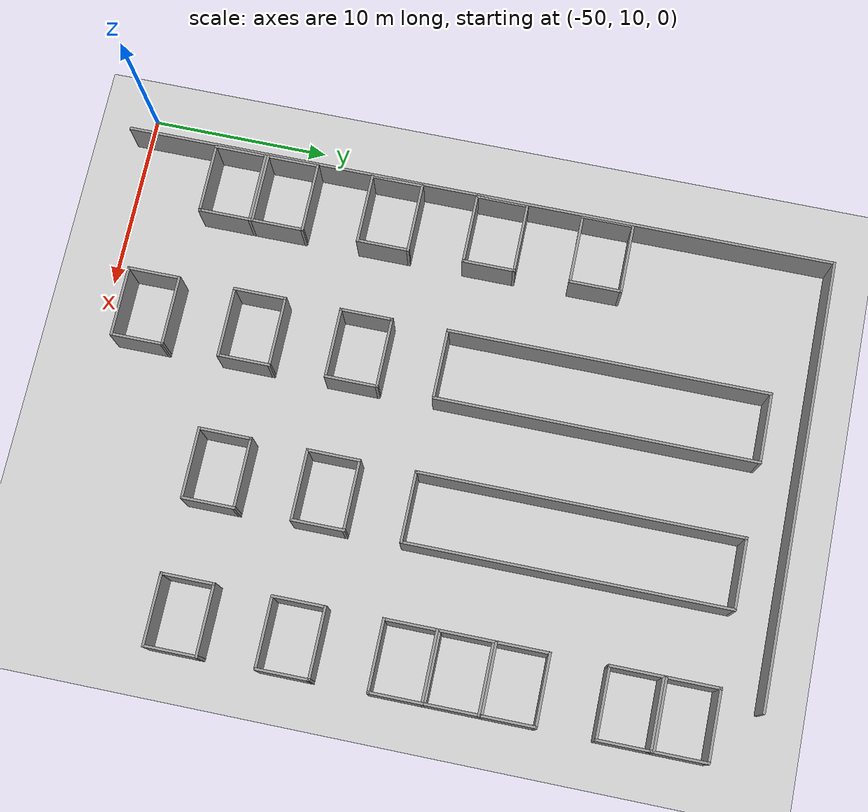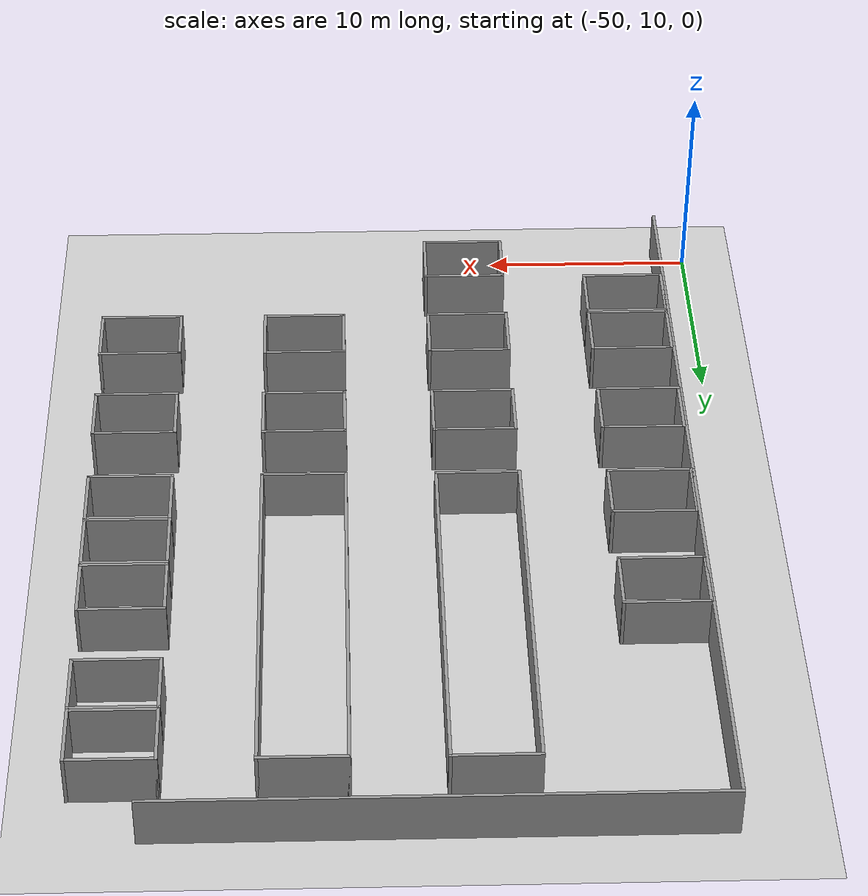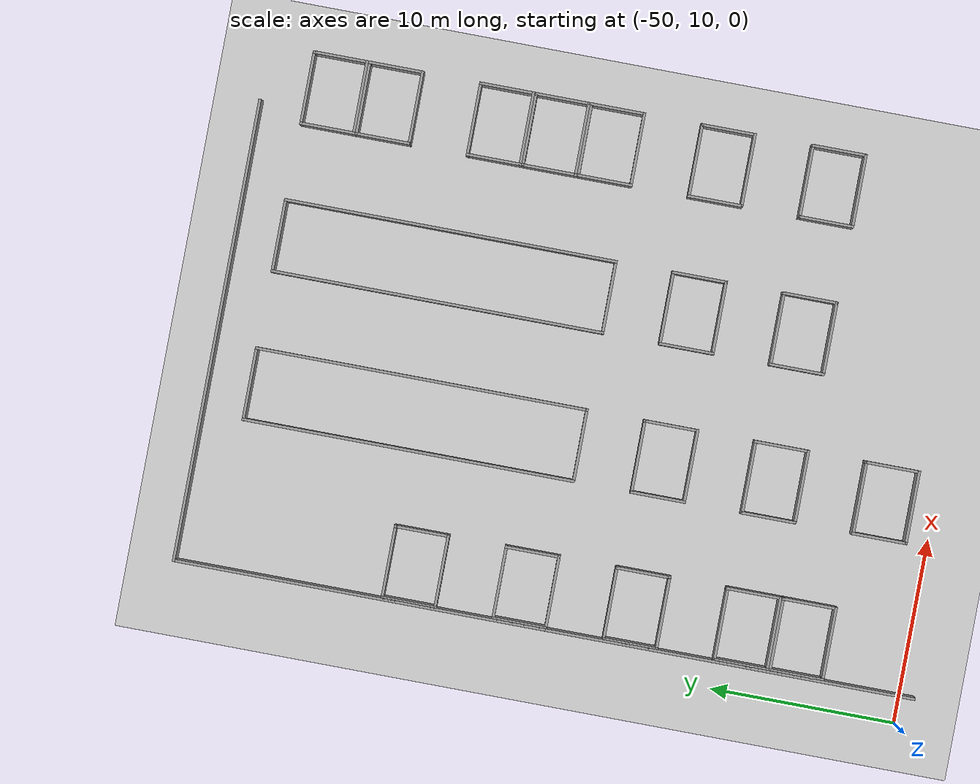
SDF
<sdf version="1.6">
 <world name="default">
  <model name="ground_plane">
   <static>1</static>
   <link name="link">
    <collision name="collision">
     <geometry><plane><normal>0 0 1</normal><size>105 105</size></plane></geometry>
     <surface>
      <contact><collide_bitmask>65535</collide_bitmask></contact>
      <friction><ode><mu>100</mu><mu2>50</mu2></ode></friction>
     </surface>
    </collision>
    <visual name="visual">
     <cast_shadows>0</cast_shadows>
     <geometry><plane><normal>0 0 1</normal><size>105 105</size></plane></geometry>
     <material>
      <script><uri>file://media/materials/scripts/gazebo.material</uri><name>Gazebo/Grey</name></script>
     </material>
    </visual>
   </link>
  </model>
  <model name="wall_v20m_1">
   <pose>-48.4186 19.2715 0 0 -0 0</pose>
   <link name="Wall_35">
    <collision name="Wall_35_Collision">
     <geometry><box><size>20 0.15 2.5</size></box></geometry>
     <pose>0 0 1.25 0 -0 0</pose>
    </collision>
    <visual name="Wall_35_Visual">
     <pose>0 0 1.25 0 -0 0</pose>
     <geometry><box><size>20 0.15 2.5</size></box></geometry>
     <material>
      <script><uri>file://media/materials/scripts/gazebo.material</uri><name>Gazebo/Grey</name></script>
      <ambient>1 1 1 1</ambient>
     </material>
     <meta><layer>0</layer></meta>
    </visual>
    <pose>0 -0 0 0 -0 -1.5708</pose>
   </link>
   <static>1</static>
  </model>
  <model name="wall_v20m_2">
   <pose>-48.4188 39.2704 0 0 -0 0</pose>
   <link name="Wall_35">
    <collision name="Wall_35_Collision">
     <geometry><box><size>20 0.15 2.5</size></box></geometry>
     <pose>0 0 1.25 0 -0 0</pose>
    </collision>
    <visual name="Wall_35_Visual">
     <pose>0 0 1.25 0 -0 0</pose>
     <geometry><box><size>20 0.15 2.5</size></box></geometry>
     <material>
      <script><uri>file://media/materials/scripts/gazebo.material</uri><name>Gazebo/Grey</name></script>
      <ambient>1 1 1 1</ambient>
     </material>
     <meta><layer>0</layer></meta>
    </visual>
    <pose>0 -0 0 0 -0 -1.5708</pose>
   </link>
   <static>1</static>
  </model>
  <model name="wall_25m_3">
   <pose>-35.9923 49.3467 0 0 -0 0</pose>
   <link name="Wall_28">
    <collision name="Wall_28_Collision">
     <geometry><box><size>25 0.15 2.5</size></box></geometry>
     <pose>0 0 1.25 0 -0 0</pose>
    </collision>
    <visual name="Wall_28_Visual">
     <pose>0 0 1.25 0 -0 0</pose>
     <geometry><box><size>25 0.15 2.5</size></box></geometry>
     <material>
      <script><uri>file://media/materials/scripts/gazebo.material</uri><name>Gazebo/Grey</name></script>
      <ambient>1 1 1 1</ambient>
     </material>
     <meta><layer>0</layer></meta>
    </visual>
   </link>
   <static>1</static>
  </model>
  <model name="base3x4_48">
   <pose>-46.3853 15.7231 0 0 -0 0</pose>
   <link name="Wall_18">
    <collision name="Wall_18_Collision">
     <geometry><box><size>3 0.15 2.5</size></box></geometry>
     <pose>0 0 1.25 0 -0 0</pose>
    </collision>
    <visual name="Wall_18_Visual">
     <pose>0 0 1.25 0 -0 0</pose>
     <geometry><box><size>3 0.15 2.5</size></box></geometry>
     <material>
      <script><uri>file://media/materials/scripts/gazebo.material</uri><name>Gazebo/Grey</name></script>
      <ambient>1 1 1 1</ambient>
     </material>
     <meta><layer>0</layer></meta>
    </visual>
    <pose>-1.925 -0 0 0 -0 -1.5708</pose>
   </link>
   <link name="Wall_19">
    <collision name="Wall_19_Collision">
     <geometry><box><size>4 0.15 2.5</size></box></geometry>
     <pose>0 0 1.25 0 -0 0</pose>
    </collision>
    <visual name="Wall_19_Visual">
     <pose>0 0 1.25 0 -0 0</pose>
     <geometry><box><size>4 0.15 2.5</size></box></geometry>
     <material>
      <script><uri>file://media/materials/scripts/gazebo.material</uri><name>Gazebo/Grey</name></script>
      <ambient>1 1 1 1</ambient>
     </material>
     <meta><layer>0</layer></meta>
    </visual>
    <pose>-0 -1.425 0 0 -0 0</pose>
   </link>
   <link name="Wall_20">
    <collision name="Wall_20_Collision">
     <geometry><box><size>3 0.15 2.5</size></box></geometry>
     <pose>0 0 1.25 0 -0 0</pose>
    </collision>
    <visual name="Wall_20_Visual">
     <pose>0 0 1.25 0 -0 0</pose>
     <geometry><box><size>3 0.15 2.5</size></box></geometry>
     <material>
      <script><uri>file://media/materials/scripts/gazebo.material</uri><name>Gazebo/Grey</name></script>
      <ambient>1 1 1 1</ambient>
     </material>
     <meta><layer>0</layer></meta>
    </visual>
    <pose>1.925 -0 0 0 -0 1.5708</pose>
   </link>
   <link name="Wall_21">
    <collision name="Wall_21_Collision">
     <geometry><box><size>4 0.15 2.5</size></box></geometry>
     <pose>0 0 1.25 0 -0 0</pose>
    </collision>
    <visual name="Wall_21_Visual">
     <pose>0 0 1.25 0 -0 0</pose>
     <geometry><box><size>4 0.15 2.5</size></box></geometry>
     <material>
      <script><uri>file://media/materials/scripts/gazebo.material</uri><name>Gazebo/Grey</name></script>
      <ambient>1 1 1 1</ambient>
     </material>
     <meta><layer>0</layer></meta>
    </visual>
    <pose>-0 1.425 0 0 -0 3.14159</pose>
   </link>
   <static>1</static>
  </model>
  <model name="base3x4_49">
   <pose>-46.3875 18.7223 0 0 -0 0</pose>
   <link name="Wall_18">
    <collision name="Wall_18_Collision">
     <geometry><box><size>3 0.15 2.5</size></box></geometry>
     <pose>0 0 1.25 0 -0 0</pose>
    </collision>
    <visual name="Wall_18_Visual">
     <pose>0 0 1.25 0 -0 0</pose>
     <geometry><box><size>3 0.15 2.5</size></box></geometry>
     <material>
      <script><uri>file://media/materials/scripts/gazebo.material</uri><name>Gazebo/Grey</name></script>
      <ambient>1 1 1 1</ambient>
     </material>
     <meta><layer>0</layer></meta>
    </visual>
    <pose>-1.925 -0 0 0 -0 -1.5708</pose>
   </link>
   <link name="Wall_19">
    <collision name="Wall_19_Collision">
     <geometry><box><size>4 0.15 2.5</size></box></geometry>
     <pose>0 0 1.25 0 -0 0</pose>
    </collision>
    <visual name="Wall_19_Visual">
     <pose>0 0 1.25 0 -0 0</pose>
     <geometry><box><size>4 0.15 2.5</size></box></geometry>
     <material>
      <script><uri>file://media/materials/scripts/gazebo.material</uri><name>Gazebo/Grey</name></script>
      <ambient>1 1 1 1</ambient>
     </material>
     <meta><layer>0</layer></meta>
    </visual>
    <pose>-0 -1.425 0 0 -0 0</pose>
   </link>
   <link name="Wall_20">
    <collision name="Wall_20_Collision">
     <geometry><box><size>3 0.15 2.5</size></box></geometry>
     <pose>0 0 1.25 0 -0 0</pose>
    </collision>
    <visual name="Wall_20_Visual">
     <pose>0 0 1.25 0 -0 0</pose>
     <geometry><box><size>3 0.15 2.5</size></box></geometry>
     <material>
      <script><uri>file://media/materials/scripts/gazebo.material</uri><name>Gazebo/Grey</name></script>
      <ambient>1 1 1 1</ambient>
     </material>
     <meta><layer>0</layer></meta>
    </visual>
    <pose>1.925 -0 0 0 -0 1.5708</pose>
   </link>
   <link name="Wall_21">
    <collision name="Wall_21_Collision">
     <geometry><box><size>4 0.15 2.5</size></box></geometry>
     <pose>0 0 1.25 0 -0 0</pose>
    </collision>
    <visual name="Wall_21_Visual">
     <pose>0 0 1.25 0 -0 0</pose>
     <geometry><box><size>4 0.15 2.5</size></box></geometry>
     <material>
      <script><uri>file://media/materials/scripts/gazebo.material</uri><name>Gazebo/Grey</name></script>
      <ambient>1 1 1 1</ambient>
     </material>
     <meta><layer>0</layer></meta>
    </visual>
    <pose>-0 1.425 0 0 -0 3.14159</pose>
   </link>
   <static>1</static>
  </model>
  <model name="base3x4_51">
   <pose>-46.3918 24.7091 0 0 -0 0</pose>
   <link name="Wall_18">
    <collision name="Wall_18_Collision">
     <geometry><box><size>3 0.15 2.5</size></box></geometry>
     <pose>0 0 1.25 0 -0 0</pose>
    </collision>
    <visual name="Wall_18_Visual">
     <pose>0 0 1.25 0 -0 0</pose>
     <geometry><box><size>3 0.15 2.5</size></box></geometry>
     <material>
      <script><uri>file://media/materials/scripts/gazebo.material</uri><name>Gazebo/Grey</name></script>
      <ambient>1 1 1 1</ambient>
     </material>
     <meta><layer>0</layer></meta>
    </visual>
    <pose>-1.925 -0 0 0 -0 -1.5708</pose>
   </link>
   <link name="Wall_19">
    <collision name="Wall_19_Collision">
     <geometry><box><size>4 0.15 2.5</size></box></geometry>
     <pose>0 0 1.25 0 -0 0</pose>
    </collision>
    <visual name="Wall_19_Visual">
     <pose>0 0 1.25 0 -0 0</pose>
     <geometry><box><size>4 0.15 2.5</size></box></geometry>
     <material>
      <script><uri>file://media/materials/scripts/gazebo.material</uri><name>Gazebo/Grey</name></script>
      <ambient>1 1 1 1</ambient>
     </material>
     <meta><layer>0</layer></meta>
    </visual>
    <pose>-0 -1.425 0 0 -0 0</pose>
   </link>
   <link name="Wall_20">
    <collision name="Wall_20_Collision">
     <geometry><box><size>3 0.15 2.5</size></box></geometry>
     <pose>0 0 1.25 0 -0 0</pose>
    </collision>
    <visual name="Wall_20_Visual">
     <pose>0 0 1.25 0 -0 0</pose>
     <geometry><box><size>3 0.15 2.5</size></box></geometry>
     <material>
      <script><uri>file://media/materials/scripts/gazebo.material</uri><name>Gazebo/Grey</name></script>
      <ambient>1 1 1 1</ambient>
     </material>
     <meta><layer>0</layer></meta>
    </visual>
    <pose>1.925 -0 0 0 -0 1.5708</pose>
   </link>
   <link name="Wall_21">
    <collision name="Wall_21_Collision">
     <geometry><box><size>4 0.15 2.5</size></box></geometry>
     <pose>0 0 1.25 0 -0 0</pose>
    </collision>
    <visual name="Wall_21_Visual">
     <pose>0 0 1.25 0 -0 0</pose>
     <geometry><box><size>4 0.15 2.5</size></box></geometry>
     <material>
      <script><uri>file://media/materials/scripts/gazebo.material</uri><name>Gazebo/Grey</name></script>
      <ambient>1 1 1 1</ambient>
     </material>
     <meta><layer>0</layer></meta>
    </visual>
    <pose>-0 1.425 0 0 -0 3.14159</pose>
   </link>
   <static>1</static>
  </model>
  <model name="base3x4_55">
   <pose>-46.398 36.6733 0 0 -0 0</pose>
   <link name="Wall_18">
    <collision name="Wall_18_Collision">
     <geometry><box><size>3 0.15 2.5</size></box></geometry>
     <pose>0 0 1.25 0 -0 0</pose>
    </collision>
    <visual name="Wall_18_Visual">
     <pose>0 0 1.25 0 -0 0</pose>
     <geometry><box><size>3 0.15 2.5</size></box></geometry>
     <material>
      <script><uri>file://media/materials/scripts/gazebo.material</uri><name>Gazebo/Grey</name></script>
      <ambient>1 1 1 1</ambient>
     </material>
     <meta><layer>0</layer></meta>
    </visual>
    <pose>-1.925 -0 0 0 -0 -1.5708</pose>
   </link>
   <link name="Wall_19">
    <collision name="Wall_19_Collision">
     <geometry><box><size>4 0.15 2.5</size></box></geometry>
     <pose>0 0 1.25 0 -0 0</pose>
    </collision>
    <visual name="Wall_19_Visual">
     <pose>0 0 1.25 0 -0 0</pose>
     <geometry><box><size>4 0.15 2.5</size></box></geometry>
     <material>
      <script><uri>file://media/materials/scripts/gazebo.material</uri><name>Gazebo/Grey</name></script>
      <ambient>1 1 1 1</ambient>
     </material>
     <meta><layer>0</layer></meta>
    </visual>
    <pose>-0 -1.425 0 0 -0 0</pose>
   </link>
   <link name="Wall_20">
    <collision name="Wall_20_Collision">
     <geometry><box><size>3 0.15 2.5</size></box></geometry>
     <pose>0 0 1.25 0 -0 0</pose>
    </collision>
    <visual name="Wall_20_Visual">
     <pose>0 0 1.25 0 -0 0</pose>
     <geometry><box><size>3 0.15 2.5</size></box></geometry>
     <material>
      <script><uri>file://media/materials/scripts/gazebo.material</uri><name>Gazebo/Grey</name></script>
      <ambient>1 1 1 1</ambient>
     </material>
     <meta><layer>0</layer></meta>
    </visual>
    <pose>1.925 -0 0 0 -0 1.5708</pose>
   </link>
   <link name="Wall_21">
    <collision name="Wall_21_Collision">
     <geometry><box><size>4 0.15 2.5</size></box></geometry>
     <pose>0 0 1.25 0 -0 0</pose>
    </collision>
    <visual name="Wall_21_Visual">
     <pose>0 0 1.25 0 -0 0</pose>
     <geometry><box><size>4 0.15 2.5</size></box></geometry>
     <material>
      <script><uri>file://media/materials/scripts/gazebo.material</uri><name>Gazebo/Grey</name></script>
      <ambient>1 1 1 1</ambient>
     </material>
     <meta><layer>0</layer></meta>
    </visual>
    <pose>-0 1.425 0 0 -0 3.14159</pose>
   </link>
   <static>1</static>
  </model>
  <model name="base18x4_3">
   <pose>-30.4275 38.1058 0 0 -0 0</pose>
   <link name="Wall_6">
    <collision name="Wall_6_Collision">
     <geometry><box><size>18 0.15 2.5</size></box></geometry>
     <pose>0 0 1.25 0 -0 0</pose>
    </collision>
    <visual name="Wall_6_Visual">
     <pose>0 0 1.25 0 -0 0</pose>
     <geometry><box><size>18 0.15 2.5</size></box></geometry>
     <material>
      <script><uri>file://media/materials/scripts/gazebo.material</uri><name>Gazebo/Grey</name></script>
      <ambient>1 1 1 1</ambient>
     </material>
     <meta><layer>0</layer></meta>
    </visual>
    <pose>-1.925 0 0 0 -0 -1.5708</pose>
   </link>
   <link name="Wall_7">
    <collision name="Wall_7_Collision">
     <geometry><box><size>4 0.15 2.5</size></box></geometry>
     <pose>0 0 1.25 0 -0 0</pose>
    </collision>
    <visual name="Wall_7_Visual">
     <pose>0 0 1.25 0 -0 0</pose>
     <geometry><box><size>4 0.15 2.5</size></box></geometry>
     <material>
      <script><uri>file://media/materials/scripts/gazebo.material</uri><name>Gazebo/Grey</name></script>
      <ambient>1 1 1 1</ambient>
     </material>
     <meta><layer>0</layer></meta>
    </visual>
    <pose>0 -8.925 0 0 -0 0</pose>
   </link>
   <link name="Wall_8">
    <collision name="Wall_8_Collision">
     <geometry><box><size>18 0.15 2.5</size></box></geometry>
     <pose>0 0 1.25 0 -0 0</pose>
    </collision>
    <visual name="Wall_8_Visual">
     <pose>0 0 1.25 0 -0 0</pose>
     <geometry><box><size>18 0.15 2.5</size></box></geometry>
     <material>
      <script><uri>file://media/materials/scripts/gazebo.material</uri><name>Gazebo/Grey</name></script>
      <ambient>1 1 1 1</ambient>
     </material>
     <meta><layer>0</layer></meta>
    </visual>
    <pose>1.925 0 0 0 -0 1.5708</pose>
   </link>
   <link name="Wall_9">
    <collision name="Wall_9_Collision">
     <geometry><box><size>4 0.15 2.5</size></box></geometry>
     <pose>0 0 1.25 0 -0 0</pose>
    </collision>
    <visual name="Wall_9_Visual">
     <pose>0 0 1.25 0 -0 0</pose>
     <geometry><box><size>4 0.15 2.5</size></box></geometry>
     <material>
      <script><uri>file://media/materials/scripts/gazebo.material</uri><name>Gazebo/Grey</name></script>
      <ambient>1 1 1 1</ambient>
     </material>
     <meta><layer>0</layer></meta>
    </visual>
    <pose>0 8.925 0 0 -0 3.14159</pose>
   </link>
   <static>1</static>
  </model>
  <model name="base3x4_44">
   <pose>-38.4474 12.7122 0 0 -0 0</pose>
   <link name="Wall_18">
    <collision name="Wall_18_Collision">
     <geometry><box><size>3 0.15 2.5</size></box></geometry>
     <pose>0 0 1.25 0 -0 0</pose>
    </collision>
    <visual name="Wall_18_Visual">
     <pose>0 0 1.25 0 -0 0</pose>
     <geometry><box><size>3 0.15 2.5</size></box></geometry>
     <material>
      <script><uri>file://media/materials/scripts/gazebo.material</uri><name>Gazebo/Grey</name></script>
      <ambient>1 1 1 1</ambient>
     </material>
     <meta><layer>0</layer></meta>
    </visual>
    <pose>-1.925 -0 0 0 -0 -1.5708</pose>
   </link>
   <link name="Wall_19">
    <collision name="Wall_19_Collision">
     <geometry><box><size>4 0.15 2.5</size></box></geometry>
     <pose>0 0 1.25 0 -0 0</pose>
    </collision>
    <visual name="Wall_19_Visual">
     <pose>0 0 1.25 0 -0 0</pose>
     <geometry><box><size>4 0.15 2.5</size></box></geometry>
     <material>
      <script><uri>file://media/materials/scripts/gazebo.material</uri><name>Gazebo/Grey</name></script>
      <ambient>1 1 1 1</ambient>
     </material>
     <meta><layer>0</layer></meta>
    </visual>
    <pose>-0 -1.425 0 0 -0 0</pose>
   </link>
   <link name="Wall_20">
    <collision name="Wall_20_Collision">
     <geometry><box><size>3 0.15 2.5</size></box></geometry>
     <pose>0 0 1.25 0 -0 0</pose>
    </collision>
    <visual name="Wall_20_Visual">
     <pose>0 0 1.25 0 -0 0</pose>
     <geometry><box><size>3 0.15 2.5</size></box></geometry>
     <material>
      <script><uri>file://media/materials/scripts/gazebo.material</uri><name>Gazebo/Grey</name></script>
      <ambient>1 1 1 1</ambient>
     </material>
     <meta><layer>0</layer></meta>
    </visual>
    <pose>1.925 -0 0 0 -0 1.5708</pose>
   </link>
   <link name="Wall_21">
    <collision name="Wall_21_Collision">
     <geometry><box><size>4 0.15 2.5</size></box></geometry>
     <pose>0 0 1.25 0 -0 0</pose>
    </collision>
    <visual name="Wall_21_Visual">
     <pose>0 0 1.25 0 -0 0</pose>
     <geometry><box><size>4 0.15 2.5</size></box></geometry>
     <material>
      <script><uri>file://media/materials/scripts/gazebo.material</uri><name>Gazebo/Grey</name></script>
      <ambient>1 1 1 1</ambient>
     </material>
     <meta><layer>0</layer></meta>
    </visual>
    <pose>-0 1.425 0 0 -0 3.14159</pose>
   </link>
   <static>1</static>
  </model>
  <model name="base3x4_82">
   <pose>-22.4351 18.5982 0 0 -0 0</pose>
   <link name="Wall_18">
    <collision name="Wall_18_Collision">
     <geometry><box><size>3 0.15 2.5</size></box></geometry>
     <pose>0 0 1.25 0 -0 0</pose>
    </collision>
    <visual name="Wall_18_Visual">
     <pose>0 0 1.25 0 -0 0</pose>
     <geometry><box><size>3 0.15 2.5</size></box></geometry>
     <material>
      <script><uri>file://media/materials/scripts/gazebo.material</uri><name>Gazebo/Grey</name></script>
      <ambient>1 1 1 1</ambient>
     </material>
     <meta><layer>0</layer></meta>
    </visual>
    <pose>-1.925 -0 0 0 -0 -1.5708</pose>
   </link>
   <link name="Wall_19">
    <collision name="Wall_19_Collision">
     <geometry><box><size>4 0.15 2.5</size></box></geometry>
     <pose>0 0 1.25 0 -0 0</pose>
    </collision>
    <visual name="Wall_19_Visual">
     <pose>0 0 1.25 0 -0 0</pose>
     <geometry><box><size>4 0.15 2.5</size></box></geometry>
     <material>
      <script><uri>file://media/materials/scripts/gazebo.material</uri><name>Gazebo/Grey</name></script>
      <ambient>1 1 1 1</ambient>
     </material>
     <meta><layer>0</layer></meta>
    </visual>
    <pose>-0 -1.425 0 0 -0 0</pose>
   </link>
   <link name="Wall_20">
    <collision name="Wall_20_Collision">
     <geometry><box><size>3 0.15 2.5</size></box></geometry>
     <pose>0 0 1.25 0 -0 0</pose>
    </collision>
    <visual name="Wall_20_Visual">
     <pose>0 0 1.25 0 -0 0</pose>
     <geometry><box><size>3 0.15 2.5</size></box></geometry>
     <material>
      <script><uri>file://media/materials/scripts/gazebo.material</uri><name>Gazebo/Grey</name></script>
      <ambient>1 1 1 1</ambient>
     </material>
     <meta><layer>0</layer></meta>
    </visual>
    <pose>1.925 -0 0 0 -0 1.5708</pose>
   </link>
   <link name="Wall_21">
    <collision name="Wall_21_Collision">
     <geometry><box><size>4 0.15 2.5</size></box></geometry>
     <pose>0 0 1.25 0 -0 0</pose>
    </collision>
    <visual name="Wall_21_Visual">
     <pose>0 0 1.25 0 -0 0</pose>
     <geometry><box><size>4 0.15 2.5</size></box></geometry>
     <material>
      <script><uri>file://media/materials/scripts/gazebo.material</uri><name>Gazebo/Grey</name></script>
      <ambient>1 1 1 1</ambient>
     </material>
     <meta><layer>0</layer></meta>
    </visual>
    <pose>-0 1.425 0 0 -0 3.14159</pose>
   </link>
   <static>1</static>
  </model>
  <model name="base3x4_84">
   <pose>-30.4269 18.6749 0 0 -0 0</pose>
   <link name="Wall_18">
    <collision name="Wall_18_Collision">
     <geometry><box><size>3 0.15 2.5</size></box></geometry>
     <pose>0 0 1.25 0 -0 0</pose>
    </collision>
    <visual name="Wall_18_Visual">
     <pose>0 0 1.25 0 -0 0</pose>
     <geometry><box><size>3 0.15 2.5</size></box></geometry>
     <material>
      <script><uri>file://media/materials/scripts/gazebo.material</uri><name>Gazebo/Grey</name></script>
      <ambient>1 1 1 1</ambient>
     </material>
     <meta><layer>0</layer></meta>
    </visual>
    <pose>-1.925 -0 0 0 -0 -1.5708</pose>
   </link>
   <link name="Wall_19">
    <collision name="Wall_19_Collision">
     <geometry><box><size>4 0.15 2.5</size></box></geometry>
     <pose>0 0 1.25 0 -0 0</pose>
    </collision>
    <visual name="Wall_19_Visual">
     <pose>0 0 1.25 0 -0 0</pose>
     <geometry><box><size>4 0.15 2.5</size></box></geometry>
     <material>
      <script><uri>file://media/materials/scripts/gazebo.material</uri><name>Gazebo/Grey</name></script>
      <ambient>1 1 1 1</ambient>
     </material>
     <meta><layer>0</layer></meta>
    </visual>
    <pose>-0 -1.425 0 0 -0 0</pose>
   </link>
   <link name="Wall_20">
    <collision name="Wall_20_Collision">
     <geometry><box><size>3 0.15 2.5</size></box></geometry>
     <pose>0 0 1.25 0 -0 0</pose>
    </collision>
    <visual name="Wall_20_Visual">
     <pose>0 0 1.25 0 -0 0</pose>
     <geometry><box><size>3 0.15 2.5</size></box></geometry>
     <material>
      <script><uri>file://media/materials/scripts/gazebo.material</uri><name>Gazebo/Grey</name></script>
      <ambient>1 1 1 1</ambient>
     </material>
     <meta><layer>0</layer></meta>
    </visual>
    <pose>1.925 -0 0 0 -0 1.5708</pose>
   </link>
   <link name="Wall_21">
    <collision name="Wall_21_Collision">
     <geometry><box><size>4 0.15 2.5</size></box></geometry>
     <pose>0 0 1.25 0 -0 0</pose>
    </collision>
    <visual name="Wall_21_Visual">
     <pose>0 0 1.25 0 -0 0</pose>
     <geometry><box><size>4 0.15 2.5</size></box></geometry>
     <material>
      <script><uri>file://media/materials/scripts/gazebo.material</uri><name>Gazebo/Grey</name></script>
      <ambient>1 1 1 1</ambient>
     </material>
     <meta><layer>0</layer></meta>
    </visual>
    <pose>-0 1.425 0 0 -0 3.14159</pose>
   </link>
   <static>1</static>
  </model>
  <model name="base3x4_86">
   <pose>-38.4521 18.7044 0 0 -0 0</pose>
   <link name="Wall_18">
    <collision name="Wall_18_Collision">
     <geometry><box><size>3 0.15 2.5</size></box></geometry>
     <pose>0 0 1.25 0 -0 0</pose>
    </collision>
    <visual name="Wall_18_Visual">
     <pose>0 0 1.25 0 -0 0</pose>
     <geometry><box><size>3 0.15 2.5</size></box></geometry>
     <material>
      <script><uri>file://media/materials/scripts/gazebo.material</uri><name>Gazebo/Grey</name></script>
      <ambient>1 1 1 1</ambient>
     </material>
     <meta><layer>0</layer></meta>
    </visual>
    <pose>-1.925 -0 0 0 -0 -1.5708</pose>
   </link>
   <link name="Wall_19">
    <collision name="Wall_19_Collision">
     <geometry><box><size>4 0.15 2.5</size></box></geometry>
     <pose>0 0 1.25 0 -0 0</pose>
    </collision>
    <visual name="Wall_19_Visual">
     <pose>0 0 1.25 0 -0 0</pose>
     <geometry><box><size>4 0.15 2.5</size></box></geometry>
     <material>
      <script><uri>file://media/materials/scripts/gazebo.material</uri><name>Gazebo/Grey</name></script>
      <ambient>1 1 1 1</ambient>
     </material>
     <meta><layer>0</layer></meta>
    </visual>
    <pose>-0 -1.425 0 0 -0 0</pose>
   </link>
   <link name="Wall_20">
    <collision name="Wall_20_Collision">
     <geometry><box><size>3 0.15 2.5</size></box></geometry>
     <pose>0 0 1.25 0 -0 0</pose>
    </collision>
    <visual name="Wall_20_Visual">
     <pose>0 0 1.25 0 -0 0</pose>
     <geometry><box><size>3 0.15 2.5</size></box></geometry>
     <material>
      <script><uri>file://media/materials/scripts/gazebo.material</uri><name>Gazebo/Grey</name></script>
      <ambient>1 1 1 1</ambient>
     </material>
     <meta><layer>0</layer></meta>
    </visual>
    <pose>1.925 -0 0 0 -0 1.5708</pose>
   </link>
   <link name="Wall_21">
    <collision name="Wall_21_Collision">
     <geometry><box><size>4 0.15 2.5</size></box></geometry>
     <pose>0 0 1.25 0 -0 0</pose>
    </collision>
    <visual name="Wall_21_Visual">
     <pose>0 0 1.25 0 -0 0</pose>
     <geometry><box><size>4 0.15 2.5</size></box></geometry>
     <material>
      <script><uri>file://media/materials/scripts/gazebo.material</uri><name>Gazebo/Grey</name></script>
      <ambient>1 1 1 1</ambient>
     </material>
     <meta><layer>0</layer></meta>
    </visual>
    <pose>-0 1.425 0 0 -0 3.14159</pose>
   </link>
   <static>1</static>
  </model>
  <model name="base18x4_0">
   <pose>-38.4538 38.1688 0 0 -0 0</pose>
   <link name="Wall_6">
    <collision name="Wall_6_Collision">
     <geometry><box><size>18 0.15 2.5</size></box></geometry>
     <pose>0 0 1.25 0 -0 0</pose>
    </collision>
    <visual name="Wall_6_Visual">
     <pose>0 0 1.25 0 -0 0</pose>
     <geometry><box><size>18 0.15 2.5</size></box></geometry>
     <material>
      <script><uri>file://media/materials/scripts/gazebo.material</uri><name>Gazebo/Grey</name></script>
      <ambient>1 1 1 1</ambient>
     </material>
     <meta><layer>0</layer></meta>
    </visual>
    <pose>-1.925 0 0 0 -0 -1.5708</pose>
   </link>
   <link name="Wall_7">
    <collision name="Wall_7_Collision">
     <geometry><box><size>4 0.15 2.5</size></box></geometry>
     <pose>0 0 1.25 0 -0 0</pose>
    </collision>
    <visual name="Wall_7_Visual">
     <pose>0 0 1.25 0 -0 0</pose>
     <geometry><box><size>4 0.15 2.5</size></box></geometry>
     <material>
      <script><uri>file://media/materials/scripts/gazebo.material</uri><name>Gazebo/Grey</name></script>
      <ambient>1 1 1 1</ambient>
     </material>
     <meta><layer>0</layer></meta>
    </visual>
    <pose>0 -8.925 0 0 -0 0</pose>
   </link>
   <link name="Wall_8">
    <collision name="Wall_8_Collision">
     <geometry><box><size>18 0.15 2.5</size></box></geometry>
     <pose>0 0 1.25 0 -0 0</pose>
    </collision>
    <visual name="Wall_8_Visual">
     <pose>0 0 1.25 0 -0 0</pose>
     <geometry><box><size>18 0.15 2.5</size></box></geometry>
     <material>
      <script><uri>file://media/materials/scripts/gazebo.material</uri><name>Gazebo/Grey</name></script>
      <ambient>1 1 1 1</ambient>
     </material>
     <meta><layer>0</layer></meta>
    </visual>
    <pose>1.925 0 0 0 -0 1.5708</pose>
   </link>
   <link name="Wall_9">
    <collision name="Wall_9_Collision">
     <geometry><box><size>4 0.15 2.5</size></box></geometry>
     <pose>0 0 1.25 0 -0 0</pose>
    </collision>
    <visual name="Wall_9_Visual">
     <pose>0 0 1.25 0 -0 0</pose>
     <geometry><box><size>4 0.15 2.5</size></box></geometry>
     <material>
      <script><uri>file://media/materials/scripts/gazebo.material</uri><name>Gazebo/Grey</name></script>
      <ambient>1 1 1 1</ambient>
     </material>
     <meta><layer>0</layer></meta>
    </visual>
    <pose>0 8.925 0 0 -0 3.14159</pose>
   </link>
   <static>1</static>
  </model>
  <model name="base3x4_80">
   <pose>-22.4387 24.5873 0 0 -0 0</pose>
   <link name="Wall_18">
    <collision name="Wall_18_Collision">
     <geometry><box><size>3 0.15 2.5</size></box></geometry>
     <pose>0 0 1.25 0 -0 0</pose>
    </collision>
    <visual name="Wall_18_Visual">
     <pose>0 0 1.25 0 -0 0</pose>
     <geometry><box><size>3 0.15 2.5</size></box></geometry>
     <material>
      <script><uri>file://media/materials/scripts/gazebo.material</uri><name>Gazebo/Grey</name></script>
      <ambient>1 1 1 1</ambient>
     </material>
     <meta><layer>0</layer></meta>
    </visual>
    <pose>-1.925 -0 0 0 -0 -1.5708</pose>
   </link>
   <link name="Wall_19">
    <collision name="Wall_19_Collision">
     <geometry><box><size>4 0.15 2.5</size></box></geometry>
     <pose>0 0 1.25 0 -0 0</pose>
    </collision>
    <visual name="Wall_19_Visual">
     <pose>0 0 1.25 0 -0 0</pose>
     <geometry><box><size>4 0.15 2.5</size></box></geometry>
     <material>
      <script><uri>file://media/materials/scripts/gazebo.material</uri><name>Gazebo/Grey</name></script>
      <ambient>1 1 1 1</ambient>
     </material>
     <meta><layer>0</layer></meta>
    </visual>
    <pose>-0 -1.425 0 0 -0 0</pose>
   </link>
   <link name="Wall_20">
    <collision name="Wall_20_Collision">
     <geometry><box><size>3 0.15 2.5</size></box></geometry>
     <pose>0 0 1.25 0 -0 0</pose>
    </collision>
    <visual name="Wall_20_Visual">
     <pose>0 0 1.25 0 -0 0</pose>
     <geometry><box><size>3 0.15 2.5</size></box></geometry>
     <material>
      <script><uri>file://media/materials/scripts/gazebo.material</uri><name>Gazebo/Grey</name></script>
      <ambient>1 1 1 1</ambient>
     </material>
     <meta><layer>0</layer></meta>
    </visual>
    <pose>1.925 -0 0 0 -0 1.5708</pose>
   </link>
   <link name="Wall_21">
    <collision name="Wall_21_Collision">
     <geometry><box><size>4 0.15 2.5</size></box></geometry>
     <pose>0 0 1.25 0 -0 0</pose>
    </collision>
    <visual name="Wall_21_Visual">
     <pose>0 0 1.25 0 -0 0</pose>
     <geometry><box><size>4 0.15 2.5</size></box></geometry>
     <material>
      <script><uri>file://media/materials/scripts/gazebo.material</uri><name>Gazebo/Grey</name></script>
      <ambient>1 1 1 1</ambient>
     </material>
     <meta><layer>0</layer></meta>
    </visual>
    <pose>-0 1.425 0 0 -0 3.14159</pose>
   </link>
   <static>1</static>
  </model>
  <model name="base3x4_85">
   <pose>-30.4252 24.6539 0 0 -0 0</pose>
   <link name="Wall_18">
    <collision name="Wall_18_Collision">
     <geometry><box><size>3 0.15 2.5</size></box></geometry>
     <pose>0 0 1.25 0 -0 0</pose>
    </collision>
    <visual name="Wall_18_Visual">
     <pose>0 0 1.25 0 -0 0</pose>
     <geometry><box><size>3 0.15 2.5</size></box></geometry>
     <material>
      <script><uri>file://media/materials/scripts/gazebo.material</uri><name>Gazebo/Grey</name></script>
      <ambient>1 1 1 1</ambient>
     </material>
     <meta><layer>0</layer></meta>
    </visual>
    <pose>-1.925 -0 0 0 -0 -1.5708</pose>
   </link>
   <link name="Wall_19">
    <collision name="Wall_19_Collision">
     <geometry><box><size>4 0.15 2.5</size></box></geometry>
     <pose>0 0 1.25 0 -0 0</pose>
    </collision>
    <visual name="Wall_19_Visual">
     <pose>0 0 1.25 0 -0 0</pose>
     <geometry><box><size>4 0.15 2.5</size></box></geometry>
     <material>
      <script><uri>file://media/materials/scripts/gazebo.material</uri><name>Gazebo/Grey</name></script>
      <ambient>1 1 1 1</ambient>
     </material>
     <meta><layer>0</layer></meta>
    </visual>
    <pose>-0 -1.425 0 0 -0 0</pose>
   </link>
   <link name="Wall_20">
    <collision name="Wall_20_Collision">
     <geometry><box><size>3 0.15 2.5</size></box></geometry>
     <pose>0 0 1.25 0 -0 0</pose>
    </collision>
    <visual name="Wall_20_Visual">
     <pose>0 0 1.25 0 -0 0</pose>
     <geometry><box><size>3 0.15 2.5</size></box></geometry>
     <material>
      <script><uri>file://media/materials/scripts/gazebo.material</uri><name>Gazebo/Grey</name></script>
      <ambient>1 1 1 1</ambient>
     </material>
     <meta><layer>0</layer></meta>
    </visual>
    <pose>1.925 -0 0 0 -0 1.5708</pose>
   </link>
   <link name="Wall_21">
    <collision name="Wall_21_Collision">
     <geometry><box><size>4 0.15 2.5</size></box></geometry>
     <pose>0 0 1.25 0 -0 0</pose>
    </collision>
    <visual name="Wall_21_Visual">
     <pose>0 0 1.25 0 -0 0</pose>
     <geometry><box><size>4 0.15 2.5</size></box></geometry>
     <material>
      <script><uri>file://media/materials/scripts/gazebo.material</uri><name>Gazebo/Grey</name></script>
      <ambient>1 1 1 1</ambient>
     </material>
     <meta><layer>0</layer></meta>
    </visual>
    <pose>-0 1.425 0 0 -0 3.14159</pose>
   </link>
   <static>1</static>
  </model>
  <model name="base3x4_88">
   <pose>-38.4548 24.6871 0 0 -0 0</pose>
   <link name="Wall_18">
    <collision name="Wall_18_Collision">
     <geometry><box><size>3 0.15 2.5</size></box></geometry>
     <pose>0 0 1.25 0 -0 0</pose>
    </collision>
    <visual name="Wall_18_Visual">
     <pose>0 0 1.25 0 -0 0</pose>
     <geometry><box><size>3 0.15 2.5</size></box></geometry>
     <material>
      <script><uri>file://media/materials/scripts/gazebo.material</uri><name>Gazebo/Grey</name></script>
      <ambient>1 1 1 1</ambient>
     </material>
     <meta><layer>0</layer></meta>
    </visual>
    <pose>-1.925 -0 0 0 -0 -1.5708</pose>
   </link>
   <link name="Wall_19">
    <collision name="Wall_19_Collision">
     <geometry><box><size>4 0.15 2.5</size></box></geometry>
     <pose>0 0 1.25 0 -0 0</pose>
    </collision>
    <visual name="Wall_19_Visual">
     <pose>0 0 1.25 0 -0 0</pose>
     <geometry><box><size>4 0.15 2.5</size></box></geometry>
     <material>
      <script><uri>file://media/materials/scripts/gazebo.material</uri><name>Gazebo/Grey</name></script>
      <ambient>1 1 1 1</ambient>
     </material>
     <meta><layer>0</layer></meta>
    </visual>
    <pose>-0 -1.425 0 0 -0 0</pose>
   </link>
   <link name="Wall_20">
    <collision name="Wall_20_Collision">
     <geometry><box><size>3 0.15 2.5</size></box></geometry>
     <pose>0 0 1.25 0 -0 0</pose>
    </collision>
    <visual name="Wall_20_Visual">
     <pose>0 0 1.25 0 -0 0</pose>
     <geometry><box><size>3 0.15 2.5</size></box></geometry>
     <material>
      <script><uri>file://media/materials/scripts/gazebo.material</uri><name>Gazebo/Grey</name></script>
      <ambient>1 1 1 1</ambient>
     </material>
     <meta><layer>0</layer></meta>
    </visual>
    <pose>1.925 -0 0 0 -0 1.5708</pose>
   </link>
   <link name="Wall_21">
    <collision name="Wall_21_Collision">
     <geometry><box><size>4 0.15 2.5</size></box></geometry>
     <pose>0 0 1.25 0 -0 0</pose>
    </collision>
    <visual name="Wall_21_Visual">
     <pose>0 0 1.25 0 -0 0</pose>
     <geometry><box><size>4 0.15 2.5</size></box></geometry>
     <material>
      <script><uri>file://media/materials/scripts/gazebo.material</uri><name>Gazebo/Grey</name></script>
      <ambient>1 1 1 1</ambient>
     </material>
     <meta><layer>0</layer></meta>
    </visual>
    <pose>-0 1.425 0 0 -0 3.14159</pose>
   </link>
   <static>1</static>
  </model>
  <model name="base3x4_93">
   <pose>-46.3903 30.6887 0 0 -0 0</pose>
   <link name="Wall_18">
    <collision name="Wall_18_Collision">
     <geometry><box><size>3 0.15 2.5</size></box></geometry>
     <pose>0 0 1.25 0 -0 0</pose>
    </collision>
    <visual name="Wall_18_Visual">
     <pose>0 0 1.25 0 -0 0</pose>
     <geometry><box><size>3 0.15 2.5</size></box></geometry>
     <material>
      <script><uri>file://media/materials/scripts/gazebo.material</uri><name>Gazebo/Grey</name></script>
      <ambient>1 1 1 1</ambient>
     </material>
     <meta><layer>0</layer></meta>
    </visual>
    <pose>-1.925 -0 0 0 -0 -1.5708</pose>
   </link>
   <link name="Wall_19">
    <collision name="Wall_19_Collision">
     <geometry><box><size>4 0.15 2.5</size></box></geometry>
     <pose>0 0 1.25 0 -0 0</pose>
    </collision>
    <visual name="Wall_19_Visual">
     <pose>0 0 1.25 0 -0 0</pose>
     <geometry><box><size>4 0.15 2.5</size></box></geometry>
     <material>
      <script><uri>file://media/materials/scripts/gazebo.material</uri><name>Gazebo/Grey</name></script>
      <ambient>1 1 1 1</ambient>
     </material>
     <meta><layer>0</layer></meta>
    </visual>
    <pose>-0 -1.425 0 0 -0 0</pose>
   </link>
   <link name="Wall_20">
    <collision name="Wall_20_Collision">
     <geometry><box><size>3 0.15 2.5</size></box></geometry>
     <pose>0 0 1.25 0 -0 0</pose>
    </collision>
    <visual name="Wall_20_Visual">
     <pose>0 0 1.25 0 -0 0</pose>
     <geometry><box><size>3 0.15 2.5</size></box></geometry>
     <material>
      <script><uri>file://media/materials/scripts/gazebo.material</uri><name>Gazebo/Grey</name></script>
      <ambient>1 1 1 1</ambient>
     </material>
     <meta><layer>0</layer></meta>
    </visual>
    <pose>1.925 -0 0 0 -0 1.5708</pose>
   </link>
   <link name="Wall_21">
    <collision name="Wall_21_Collision">
     <geometry><box><size>4 0.15 2.5</size></box></geometry>
     <pose>0 0 1.25 0 -0 0</pose>
    </collision>
    <visual name="Wall_21_Visual">
     <pose>0 0 1.25 0 -0 0</pose>
     <geometry><box><size>4 0.15 2.5</size></box></geometry>
     <material>
      <script><uri>file://media/materials/scripts/gazebo.material</uri><name>Gazebo/Grey</name></script>
      <ambient>1 1 1 1</ambient>
     </material>
     <meta><layer>0</layer></meta>
    </visual>
    <pose>-0 1.425 0 0 -0 3.14159</pose>
   </link>
   <static>1</static>
  </model>
  <model name="base3x4_89">
   <pose>-22.4372 30.571 0 0 -0 0</pose>
   <link name="Wall_18">
    <collision name="Wall_18_Collision">
     <geometry><box><size>3 0.15 2.5</size></box></geometry>
     <pose>0 0 1.25 0 -0 0</pose>
    </collision>
    <visual name="Wall_18_Visual">
     <pose>0 0 1.25 0 -0 0</pose>
     <geometry><box><size>3 0.15 2.5</size></box></geometry>
     <material>
      <script><uri>file://media/materials/scripts/gazebo.material</uri><name>Gazebo/Grey</name></script>
      <ambient>1 1 1 1</ambient>
     </material>
     <meta><layer>0</layer></meta>
    </visual>
    <pose>-1.925 -0 0 0 -0 -1.5708</pose>
   </link>
   <link name="Wall_19">
    <collision name="Wall_19_Collision">
     <geometry><box><size>4 0.15 2.5</size></box></geometry>
     <pose>0 0 1.25 0 -0 0</pose>
    </collision>
    <visual name="Wall_19_Visual">
     <pose>0 0 1.25 0 -0 0</pose>
     <geometry><box><size>4 0.15 2.5</size></box></geometry>
     <material>
      <script><uri>file://media/materials/scripts/gazebo.material</uri><name>Gazebo/Grey</name></script>
      <ambient>1 1 1 1</ambient>
     </material>
     <meta><layer>0</layer></meta>
    </visual>
    <pose>-0 -1.425 0 0 -0 0</pose>
   </link>
   <link name="Wall_20">
    <collision name="Wall_20_Collision">
     <geometry><box><size>3 0.15 2.5</size></box></geometry>
     <pose>0 0 1.25 0 -0 0</pose>
    </collision>
    <visual name="Wall_20_Visual">
     <pose>0 0 1.25 0 -0 0</pose>
     <geometry><box><size>3 0.15 2.5</size></box></geometry>
     <material>
      <script><uri>file://media/materials/scripts/gazebo.material</uri><name>Gazebo/Grey</name></script>
      <ambient>1 1 1 1</ambient>
     </material>
     <meta><layer>0</layer></meta>
    </visual>
    <pose>1.925 -0 0 0 -0 1.5708</pose>
   </link>
   <link name="Wall_21">
    <collision name="Wall_21_Collision">
     <geometry><box><size>4 0.15 2.5</size></box></geometry>
     <pose>0 0 1.25 0 -0 0</pose>
    </collision>
    <visual name="Wall_21_Visual">
     <pose>0 0 1.25 0 -0 0</pose>
     <geometry><box><size>4 0.15 2.5</size></box></geometry>
     <material>
      <script><uri>file://media/materials/scripts/gazebo.material</uri><name>Gazebo/Grey</name></script>
      <ambient>1 1 1 1</ambient>
     </material>
     <meta><layer>0</layer></meta>
    </visual>
    <pose>-0 1.425 0 0 -0 3.14159</pose>
   </link>
   <static>1</static>
  </model>
  <model name="base3x4_90">
   <pose>-22.4383 33.565 0 0 -0 0</pose>
   <link name="Wall_18">
    <collision name="Wall_18_Collision">
     <geometry><box><size>3 0.15 2.5</size></box></geometry>
     <pose>0 0 1.25 0 -0 0</pose>
    </collision>
    <visual name="Wall_18_Visual">
     <pose>0 0 1.25 0 -0 0</pose>
     <geometry><box><size>3 0.15 2.5</size></box></geometry>
     <material>
      <script><uri>file://media/materials/scripts/gazebo.material</uri><name>Gazebo/Grey</name></script>
      <ambient>1 1 1 1</ambient>
     </material>
     <meta><layer>0</layer></meta>
    </visual>
    <pose>-1.925 -0 0 0 -0 -1.5708</pose>
   </link>
   <link name="Wall_19">
    <collision name="Wall_19_Collision">
     <geometry><box><size>4 0.15 2.5</size></box></geometry>
     <pose>0 0 1.25 0 -0 0</pose>
    </collision>
    <visual name="Wall_19_Visual">
     <pose>0 0 1.25 0 -0 0</pose>
     <geometry><box><size>4 0.15 2.5</size></box></geometry>
     <material>
      <script><uri>file://media/materials/scripts/gazebo.material</uri><name>Gazebo/Grey</name></script>
      <ambient>1 1 1 1</ambient>
     </material>
     <meta><layer>0</layer></meta>
    </visual>
    <pose>-0 -1.425 0 0 -0 0</pose>
   </link>
   <link name="Wall_20">
    <collision name="Wall_20_Collision">
     <geometry><box><size>3 0.15 2.5</size></box></geometry>
     <pose>0 0 1.25 0 -0 0</pose>
    </collision>
    <visual name="Wall_20_Visual">
     <pose>0 0 1.25 0 -0 0</pose>
     <geometry><box><size>3 0.15 2.5</size></box></geometry>
     <material>
      <script><uri>file://media/materials/scripts/gazebo.material</uri><name>Gazebo/Grey</name></script>
      <ambient>1 1 1 1</ambient>
     </material>
     <meta><layer>0</layer></meta>
    </visual>
    <pose>1.925 -0 0 0 -0 1.5708</pose>
   </link>
   <link name="Wall_21">
    <collision name="Wall_21_Collision">
     <geometry><box><size>4 0.15 2.5</size></box></geometry>
     <pose>0 0 1.25 0 -0 0</pose>
    </collision>
    <visual name="Wall_21_Visual">
     <pose>0 0 1.25 0 -0 0</pose>
     <geometry><box><size>4 0.15 2.5</size></box></geometry>
     <material>
      <script><uri>file://media/materials/scripts/gazebo.material</uri><name>Gazebo/Grey</name></script>
      <ambient>1 1 1 1</ambient>
     </material>
     <meta><layer>0</layer></meta>
    </visual>
    <pose>-0 1.425 0 0 -0 3.14159</pose>
   </link>
   <static>1</static>
  </model>
  <model name="base3x4_91">
   <pose>-22.4355 36.5596 0 0 -0 0</pose>
   <link name="Wall_18">
    <collision name="Wall_18_Collision">
     <geometry><box><size>3 0.15 2.5</size></box></geometry>
     <pose>0 0 1.25 0 -0 0</pose>
    </collision>
    <visual name="Wall_18_Visual">
     <pose>0 0 1.25 0 -0 0</pose>
     <geometry><box><size>3 0.15 2.5</size></box></geometry>
     <material>
      <script><uri>file://media/materials/scripts/gazebo.material</uri><name>Gazebo/Grey</name></script>
      <ambient>1 1 1 1</ambient>
     </material>
     <meta><layer>0</layer></meta>
    </visual>
    <pose>-1.925 -0 0 0 -0 -1.5708</pose>
   </link>
   <link name="Wall_19">
    <collision name="Wall_19_Collision">
     <geometry><box><size>4 0.15 2.5</size></box></geometry>
     <pose>0 0 1.25 0 -0 0</pose>
    </collision>
    <visual name="Wall_19_Visual">
     <pose>0 0 1.25 0 -0 0</pose>
     <geometry><box><size>4 0.15 2.5</size></box></geometry>
     <material>
      <script><uri>file://media/materials/scripts/gazebo.material</uri><name>Gazebo/Grey</name></script>
      <ambient>1 1 1 1</ambient>
     </material>
     <meta><layer>0</layer></meta>
    </visual>
    <pose>-0 -1.425 0 0 -0 0</pose>
   </link>
   <link name="Wall_20">
    <collision name="Wall_20_Collision">
     <geometry><box><size>3 0.15 2.5</size></box></geometry>
     <pose>0 0 1.25 0 -0 0</pose>
    </collision>
    <visual name="Wall_20_Visual">
     <pose>0 0 1.25 0 -0 0</pose>
     <geometry><box><size>3 0.15 2.5</size></box></geometry>
     <material>
      <script><uri>file://media/materials/scripts/gazebo.material</uri><name>Gazebo/Grey</name></script>
      <ambient>1 1 1 1</ambient>
     </material>
     <meta><layer>0</layer></meta>
    </visual>
    <pose>1.925 -0 0 0 -0 1.5708</pose>
   </link>
   <link name="Wall_21">
    <collision name="Wall_21_Collision">
     <geometry><box><size>4 0.15 2.5</size></box></geometry>
     <pose>0 0 1.25 0 -0 0</pose>
    </collision>
    <visual name="Wall_21_Visual">
     <pose>0 0 1.25 0 -0 0</pose>
     <geometry><box><size>4 0.15 2.5</size></box></geometry>
     <material>
      <script><uri>file://media/materials/scripts/gazebo.material</uri><name>Gazebo/Grey</name></script>
      <ambient>1 1 1 1</ambient>
     </material>
     <meta><layer>0</layer></meta>
    </visual>
    <pose>-0 1.425 0 0 -0 3.14159</pose>
   </link>
   <static>1</static>
  </model>
  <model name="base3x4_94">
   <pose>-22.4306 42.5564 0 0 -0 0</pose>
   <link name="Wall_18">
    <collision name="Wall_18_Collision">
     <geometry><box><size>3 0.15 2.5</size></box></geometry>
     <pose>0 0 1.25 0 -0 0</pose>
    </collision>
    <visual name="Wall_18_Visual">
     <pose>0 0 1.25 0 -0 0</pose>
     <geometry><box><size>3 0.15 2.5</size></box></geometry>
     <material>
      <script><uri>file://media/materials/scripts/gazebo.material</uri><name>Gazebo/Grey</name></script>
      <ambient>1 1 1 1</ambient>
     </material>
     <meta><layer>0</layer></meta>
    </visual>
    <pose>-1.925 -0 0 0 -0 -1.5708</pose>
   </link>
   <link name="Wall_19">
    <collision name="Wall_19_Collision">
     <geometry><box><size>4 0.15 2.5</size></box></geometry>
     <pose>0 0 1.25 0 -0 0</pose>
    </collision>
    <visual name="Wall_19_Visual">
     <pose>0 0 1.25 0 -0 0</pose>
     <geometry><box><size>4 0.15 2.5</size></box></geometry>
     <material>
      <script><uri>file://media/materials/scripts/gazebo.material</uri><name>Gazebo/Grey</name></script>
      <ambient>1 1 1 1</ambient>
     </material>
     <meta><layer>0</layer></meta>
    </visual>
    <pose>-0 -1.425 0 0 -0 0</pose>
   </link>
   <link name="Wall_20">
    <collision name="Wall_20_Collision">
     <geometry><box><size>3 0.15 2.5</size></box></geometry>
     <pose>0 0 1.25 0 -0 0</pose>
    </collision>
    <visual name="Wall_20_Visual">
     <pose>0 0 1.25 0 -0 0</pose>
     <geometry><box><size>3 0.15 2.5</size></box></geometry>
     <material>
      <script><uri>file://media/materials/scripts/gazebo.material</uri><name>Gazebo/Grey</name></script>
      <ambient>1 1 1 1</ambient>
     </material>
     <meta><layer>0</layer></meta>
    </visual>
    <pose>1.925 -0 0 0 -0 1.5708</pose>
   </link>
   <link name="Wall_21">
    <collision name="Wall_21_Collision">
     <geometry><box><size>4 0.15 2.5</size></box></geometry>
     <pose>0 0 1.25 0 -0 0</pose>
    </collision>
    <visual name="Wall_21_Visual">
     <pose>0 0 1.25 0 -0 0</pose>
     <geometry><box><size>4 0.15 2.5</size></box></geometry>
     <material>
      <script><uri>file://media/materials/scripts/gazebo.material</uri><name>Gazebo/Grey</name></script>
      <ambient>1 1 1 1</ambient>
     </material>
     <meta><layer>0</layer></meta>
    </visual>
    <pose>-0 1.425 0 0 -0 3.14159</pose>
   </link>
   <static>1</static>
  </model>
  <model name="base3x4_95">
   <pose>-22.4308 45.5533 0 0 -0 0</pose>
   <link name="Wall_18">
    <collision name="Wall_18_Collision">
     <geometry><box><size>3 0.15 2.5</size></box></geometry>
     <pose>0 0 1.25 0 -0 0</pose>
    </collision>
    <visual name="Wall_18_Visual">
     <pose>0 0 1.25 0 -0 0</pose>
     <geometry><box><size>3 0.15 2.5</size></box></geometry>
     <material>
      <script><uri>file://media/materials/scripts/gazebo.material</uri><name>Gazebo/Grey</name></script>
      <ambient>1 1 1 1</ambient>
     </material>
     <meta><layer>0</layer></meta>
    </visual>
    <pose>-1.925 -0 0 0 -0 -1.5708</pose>
   </link>
   <link name="Wall_19">
    <collision name="Wall_19_Collision">
     <geometry><box><size>4 0.15 2.5</size></box></geometry>
     <pose>0 0 1.25 0 -0 0</pose>
    </collision>
    <visual name="Wall_19_Visual">
     <pose>0 0 1.25 0 -0 0</pose>
     <geometry><box><size>4 0.15 2.5</size></box></geometry>
     <material>
      <script><uri>file://media/materials/scripts/gazebo.material</uri><name>Gazebo/Grey</name></script>
      <ambient>1 1 1 1</ambient>
     </material>
     <meta><layer>0</layer></meta>
    </visual>
    <pose>-0 -1.425 0 0 -0 0</pose>
   </link>
   <link name="Wall_20">
    <collision name="Wall_20_Collision">
     <geometry><box><size>3 0.15 2.5</size></box></geometry>
     <pose>0 0 1.25 0 -0 0</pose>
    </collision>
    <visual name="Wall_20_Visual">
     <pose>0 0 1.25 0 -0 0</pose>
     <geometry><box><size>3 0.15 2.5</size></box></geometry>
     <material>
      <script><uri>file://media/materials/scripts/gazebo.material</uri><name>Gazebo/Grey</name></script>
      <ambient>1 1 1 1</ambient>
     </material>
     <meta><layer>0</layer></meta>
    </visual>
    <pose>1.925 -0 0 0 -0 1.5708</pose>
   </link>
   <link name="Wall_21">
    <collision name="Wall_21_Collision">
     <geometry><box><size>4 0.15 2.5</size></box></geometry>
     <pose>0 0 1.25 0 -0 0</pose>
    </collision>
    <visual name="Wall_21_Visual">
     <pose>0 0 1.25 0 -0 0</pose>
     <geometry><box><size>4 0.15 2.5</size></box></geometry>
     <material>
      <script><uri>file://media/materials/scripts/gazebo.material</uri><name>Gazebo/Grey</name></script>
      <ambient>1 1 1 1</ambient>
     </material>
     <meta><layer>0</layer></meta>
    </visual>
    <pose>-0 1.425 0 0 -0 3.14159</pose>
   </link>
   <static>1</static>
  </model>
 </world>
</sdf>
